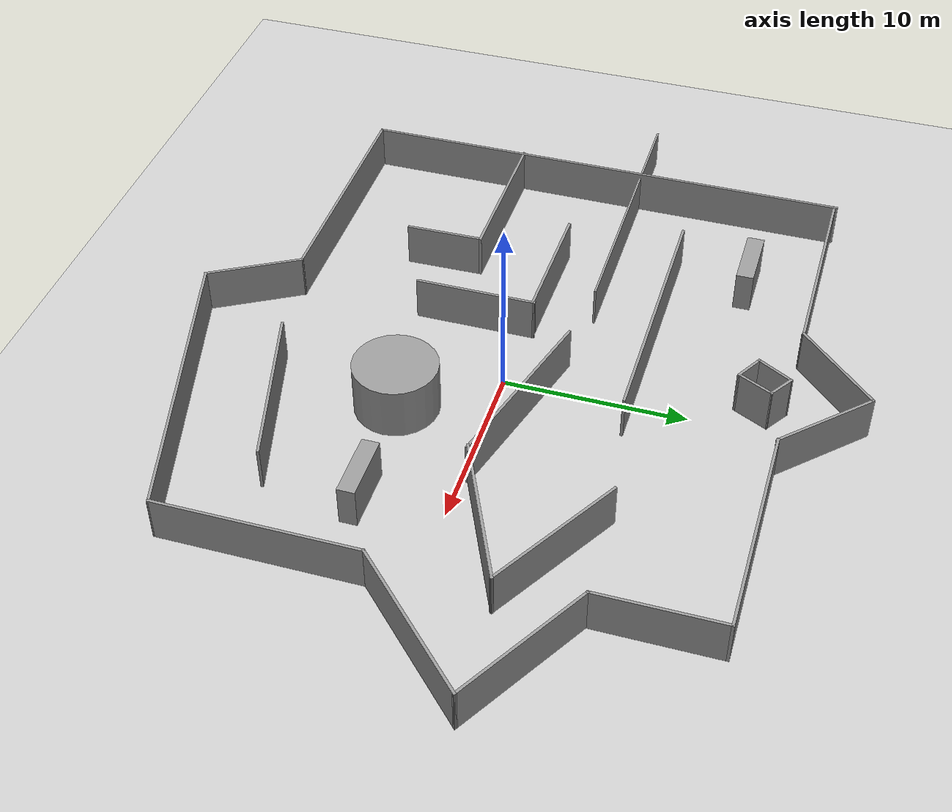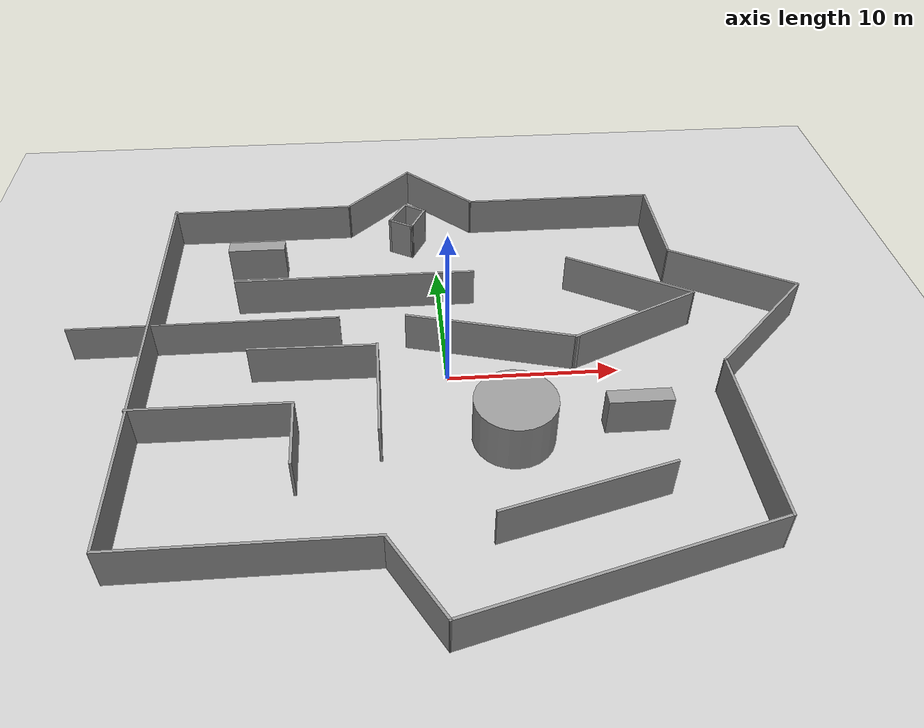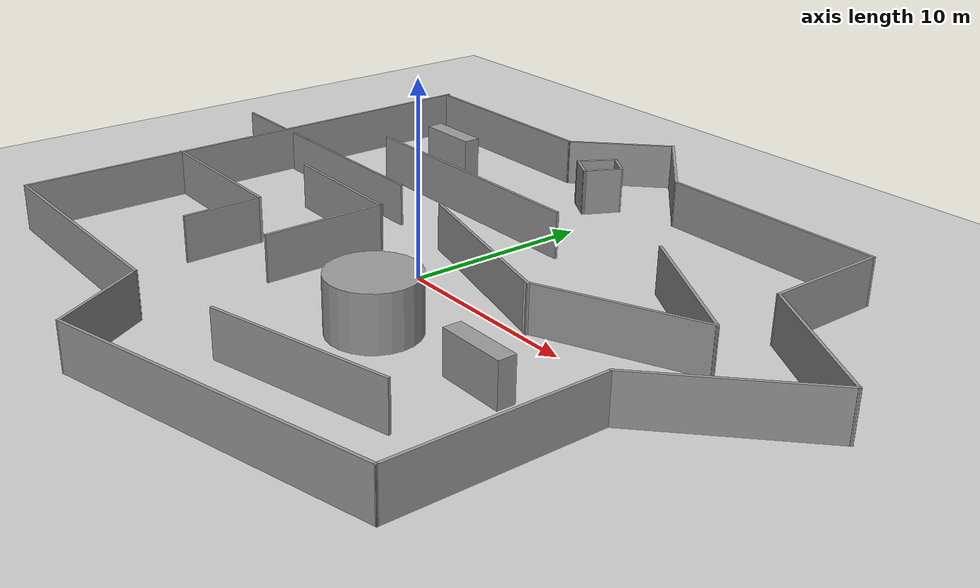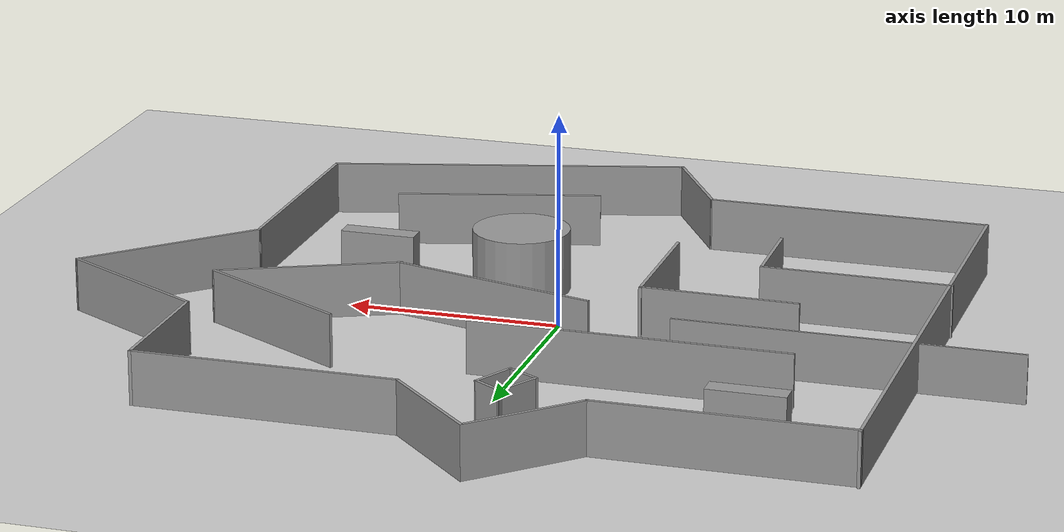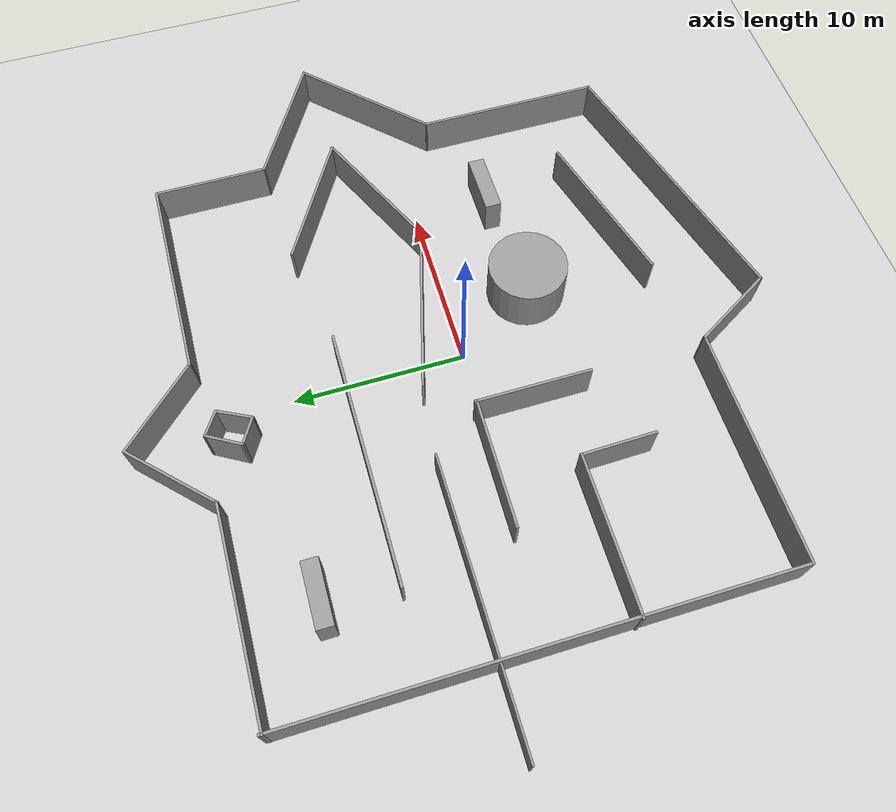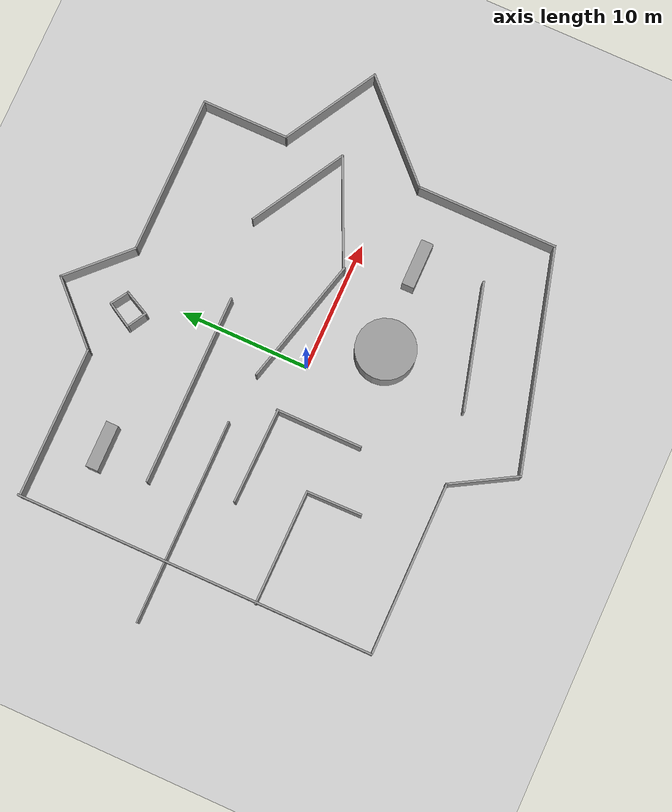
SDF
<sdf version="1.7">
 <world name="default">
  <light name="sun" type="directional">
   <pose>0 0 10 0 -0 0</pose>
   <diffuse>0.8 0.8 0.8 1</diffuse>
   <specular>0.2 0.2 0.2 1</specular>
   <attenuation>
    <range>1000</range>
    <constant>0.9</constant>
    <linear>0.01</linear>
    <quadratic>0.001</quadratic>
   </attenuation>
   <direction>-0.5 0.1 -0.9</direction>
   <spot><inner_angle>0</inner_angle><outer_angle>0</outer_angle><falloff>0</falloff></spot>
  </light>
  <model name="ground_plane">
   <static>1</static>
   <link name="link">
    <collision name="collision">
     <geometry><plane><normal>0 0 1</normal><size>100 100</size></plane></geometry>
     <surface>
      <contact><collide_bitmask>65535</collide_bitmask></contact>
      <friction><ode><mu>100</mu><mu2>50</mu2></ode></friction>
     </surface>
    </collision>
    <visual name="visual">
     <cast_shadows>0</cast_shadows>
     <geometry><plane><normal>0 0 1</normal><size>100 100</size></plane></geometry>
     <material>
      <script><uri>file://media/materials/scripts/gazebo.material</uri><name>Gazebo/Grey</name></script>
     </material>
    </visual>
   </link>
  </model>
  <gravity>0 0 -9.8</gravity>
  <magnetic_field>6e-06 2.3e-05 -4.2e-05</magnetic_field>
  <atmosphere type="adiabatic"/>
  <physics type="ode">
   <max_step_size>0.001</max_step_size>
   <real_time_factor>1</real_time_factor>
   <real_time_update_rate>1000</real_time_update_rate>
  </physics>
  <scene><ambient>0.4 0.4 0.4 1</ambient><background>0.7 0.7 0.7 1</background><shadows>1</shadows></scene>
  <audio><device>default</device></audio>
  <spherical_coordinates>
   <surface_model>EARTH_WGS84</surface_model>
   <latitude_deg>0</latitude_deg>
   <longitude_deg>0</longitude_deg>
   <elevation>0</elevation>
   <heading_deg>0</heading_deg>
  </spherical_coordinates>
  <model name="hard_test_model">
   <pose>2.24994 0.789451 0 0 -0 0</pose>
   <link name="Wall_10">
    <collision name="Wall_10_Collision">
     <geometry><box><size>11 0.15 2.5</size></box></geometry>
     <pose>0 0 1.25 0 -0 0</pose>
    </collision>
    <visual name="Wall_10_Visual">
     <pose>0 0 1.25 0 -0 0</pose>
     <geometry><box><size>11 0.15 2.5</size></box></geometry>
     <material>
      <script><uri>file://media/materials/scripts/gazebo.material</uri><name>Gazebo/Grey</name></script>
      <ambient>1 1 1 1</ambient>
     </material>
     <meta><layer>0</layer></meta>
    </visual>
    <pose>13.0803 -8.39953 0 0 -0 1.5708</pose>
   </link>
   <link name="Wall_11">
    <collision name="Wall_11_Collision">
     <geometry><box><size>9.25 0.15 2.5</size></box></geometry>
     <pose>0 0 1.25 0 -0 0</pose>
    </collision>
    <visual name="Wall_11_Visual">
     <pose>0 0 1.25 0 -0 0</pose>
     <geometry><box><size>9.25 0.15 2.5</size></box></geometry>
     <material>
      <script><uri>file://media/materials/scripts/gazebo.material</uri><name>Gazebo/Grey</name></script>
      <ambient>1 1 1 1</ambient>
     </material>
     <meta><layer>0</layer></meta>
    </visual>
    <pose>16.2976 0.242808 0 0 -0 0.785398</pose>
   </link>
   <link name="Wall_12">
    <collision name="Wall_12_Collision">
     <geometry><box><size>8.25 0.15 2.5</size></box></geometry>
     <pose>0 0 1.25 0 -0 0</pose>
    </collision>
    <visual name="Wall_12_Visual">
     <pose>0 0 1.25 0 -0 0</pose>
     <geometry><box><size>8.25 0.15 2.5</size></box></geometry>
     <material>
      <script><uri>file://media/materials/scripts/gazebo.material</uri><name>Gazebo/Grey</name></script>
      <ambient>1 1 1 1</ambient>
     </material>
     <meta><layer>0</layer></meta>
    </visual>
    <pose>16.0075 5.48514 0 0 -0 2.61799</pose>
   </link>
   <link name="Wall_13">
    <collision name="Wall_13_Collision">
     <geometry><box><size>6.75 0.15 2.5</size></box></geometry>
     <pose>0 0 1.25 0 -0 0</pose>
    </collision>
    <visual name="Wall_13_Visual">
     <pose>0 0 1.25 0 -0 0</pose>
     <geometry><box><size>6.75 0.15 2.5</size></box></geometry>
     <material>
      <script><uri>file://media/materials/scripts/gazebo.material</uri><name>Gazebo/Grey</name></script>
      <ambient>1 1 1 1</ambient>
     </material>
     <meta><layer>0</layer></meta>
    </visual>
    <pose>12.5001 10.8101 0 0 -0 1.5708</pose>
   </link>
   <link name="Wall_14">
    <collision name="Wall_14_Collision">
     <geometry><box><size>12.25 0.15 2.5</size></box></geometry>
     <pose>0 0 1.25 0 -0 0</pose>
    </collision>
    <visual name="Wall_14_Visual">
     <pose>0 0 1.25 0 -0 0</pose>
     <geometry><box><size>12.25 0.15 2.5</size></box></geometry>
     <material>
      <script><uri>file://media/materials/scripts/gazebo.material</uri><name>Gazebo/Grey</name></script>
      <ambient>1 1 1 1</ambient>
     </material>
     <meta><layer>0</layer></meta>
    </visual>
    <pose>6.45013 14.1101 0 0 -0 3.14159</pose>
   </link>
   <link name="Wall_15">
    <collision name="Wall_15_Collision">
     <geometry><box><size>6 0.15 2.5</size></box></geometry>
     <pose>0 0 1.25 0 -0 0</pose>
    </collision>
    <visual name="Wall_15_Visual">
     <pose>0 0 1.25 0 -0 0</pose>
     <geometry><box><size>6 0.15 2.5</size></box></geometry>
     <material>
      <script><uri>file://media/materials/scripts/gazebo.material</uri><name>Gazebo/Grey</name></script>
      <ambient>1 1 1 1</ambient>
     </material>
     <meta><layer>0</layer></meta>
    </visual>
    <pose>-1.66816 16.1784 0 0 -0 2.35619</pose>
   </link>
   <link name="Wall_16">
    <collision name="Wall_16_Collision">
     <geometry><box><size>6 0.15 2.5</size></box></geometry>
     <pose>0 0 1.25 0 -0 0</pose>
    </collision>
    <visual name="Wall_16_Visual">
     <pose>0 0 1.25 0 -0 0</pose>
     <geometry><box><size>6 0.15 2.5</size></box></geometry>
     <material>
      <script><uri>file://media/materials/scripts/gazebo.material</uri><name>Gazebo/Grey</name></script>
      <ambient>1 1 1 1</ambient>
     </material>
     <meta><layer>0</layer></meta>
    </visual>
    <pose>-5.80473 16.1784 0 0 -0 -2.35619</pose>
   </link>
   <link name="Wall_17">
    <collision name="Wall_17_Collision">
     <geometry><box><size>11.75 0.15 2.5</size></box></geometry>
     <pose>0 0 1.25 0 -0 0</pose>
    </collision>
    <visual name="Wall_17_Visual">
     <pose>0 0 1.25 0 -0 0</pose>
     <geometry><box><size>11.75 0.15 2.5</size></box></geometry>
     <material>
      <script><uri>file://media/materials/scripts/gazebo.material</uri><name>Gazebo/Grey</name></script>
      <ambient>1 1 1 1</ambient>
     </material>
     <meta><layer>0</layer></meta>
    </visual>
    <pose>-13.673 14.1101 0 0 -0 3.14159</pose>
   </link>
   <link name="Wall_19">
    <collision name="Wall_19_Collision">
     <geometry><box><size>14.75 0.15 2.5</size></box></geometry>
     <pose>0 0 1.25 0 -0 0</pose>
    </collision>
    <visual name="Wall_19_Visual">
     <pose>0 0 1.25 0 -0 0</pose>
     <geometry><box><size>14.75 0.15 2.5</size></box></geometry>
     <material>
      <script><uri>file://media/materials/scripts/gazebo.material</uri><name>Gazebo/Grey</name></script>
      <ambient>1 1 1 1</ambient>
     </material>
     <meta><layer>0</layer></meta>
    </visual>
    <pose>-7.46874 6.19096 0 0 -0 0</pose>
   </link>
   <link name="Wall_26">
    <collision name="Wall_26_Collision">
     <geometry><box><size>8.95017 0.15 2.5</size></box></geometry>
     <pose>0 0 1.25 0 -0 0</pose>
    </collision>
    <visual name="Wall_26_Visual">
     <pose>0 0 1.25 0 -0 0</pose>
     <geometry><box><size>8.95017 0.15 2.5</size></box></geometry>
     <material>
      <script><uri>file://media/materials/scripts/gazebo.material</uri><name>Gazebo/Grey</name></script>
      <ambient>1 1 1 1</ambient>
     </material>
     <meta><layer>0</layer></meta>
    </visual>
    <pose>-15.1455 -4.60613 0 0 -0 -0.007733</pose>
   </link>
   <link name="Wall_27">
    <collision name="Wall_27_Collision">
     <geometry><box><size>4.22977 0.15 2.5</size></box></geometry>
     <pose>0 0 1.25 0 -0 0</pose>
    </collision>
    <visual name="Wall_27_Visual">
     <pose>0 0 1.25 0 -0 0</pose>
     <geometry><box><size>4.22977 0.15 2.5</size></box></geometry>
     <material>
      <script><uri>file://media/materials/scripts/gazebo.material</uri><name>Gazebo/Grey</name></script>
      <ambient>1 1 1 1</ambient>
     </material>
     <meta><layer>0</layer></meta>
    </visual>
    <pose>-10.7115 -6.81586 0 0 -0 -1.55411</pose>
   </link>
   <link name="Wall_29">
    <collision name="Wall_29_Collision">
     <geometry><box><size>7.43038 0.15 2.5</size></box></geometry>
     <pose>0 0 1.25 0 -0 0</pose>
    </collision>
    <visual name="Wall_29_Visual">
     <pose>0 0 1.25 0 -0 0</pose>
     <geometry><box><size>7.43038 0.15 2.5</size></box></geometry>
     <material>
      <script><uri>file://media/materials/scripts/gazebo.material</uri><name>Gazebo/Grey</name></script>
      <ambient>1 1 1 1</ambient>
     </material>
     <meta><layer>0</layer></meta>
    </visual>
    <pose>-9.86099 -0.237423 0 0 -0 -0.018696</pose>
   </link>
   <link name="Wall_3">
    <collision name="Wall_3_Collision">
     <geometry><box><size>28 0.15 2.5</size></box></geometry>
     <pose>0 0 1.25 0 -0 0</pose>
    </collision>
    <visual name="Wall_3_Visual">
     <pose>0 0 1.25 0 -0 0</pose>
     <geometry><box><size>28 0.15 2.5</size></box></geometry>
     <material>
      <script><uri>file://media/materials/scripts/gazebo.material</uri><name>Gazebo/Grey</name></script>
      <ambient>1 1 1 1</ambient>
     </material>
     <meta><layer>0</layer></meta>
    </visual>
    <pose>-19.4621 0.307902 0 0 -0 -1.5708</pose>
   </link>
   <link name="Wall_30">
    <collision name="Wall_30_Collision">
     <geometry><box><size>6.75 0.15 2.5</size></box></geometry>
     <pose>0 0 1.25 0 -0 0</pose>
    </collision>
    <visual name="Wall_30_Visual">
     <pose>0 0 1.25 0 -0 0</pose>
     <geometry><box><size>6.75 0.15 2.5</size></box></geometry>
     <material>
      <script><uri>file://media/materials/scripts/gazebo.material</uri><name>Gazebo/Grey</name></script>
      <ambient>1 1 1 1</ambient>
     </material>
     <meta><layer>0</layer></meta>
    </visual>
    <pose>-6.22144 -3.53742 0 0 -0 -1.5708</pose>
   </link>
   <link name="Wall_38">
    <collision name="Wall_38_Collision">
     <geometry><box><size>9.75 0.15 2.5</size></box></geometry>
     <pose>0 0 1.25 0 -0 0</pose>
    </collision>
    <visual name="Wall_38_Visual">
     <pose>0 0 1.25 0 -0 0</pose>
     <geometry><box><size>9.75 0.15 2.5</size></box></geometry>
     <material>
      <script><uri>file://media/materials/scripts/gazebo.material</uri><name>Gazebo/Grey</name></script>
      <ambient>1 1 1 1</ambient>
     </material>
     <meta><layer>0</layer></meta>
    </visual>
    <pose>3.88202 -11.3761 0 0 -0 0.261799</pose>
   </link>
   <link name="Wall_4">
    <collision name="Wall_4_Collision">
     <geometry><box><size>13.5 0.15 2.5</size></box></geometry>
     <pose>0 0 1.25 0 -0 0</pose>
    </collision>
    <visual name="Wall_4_Visual">
     <pose>0 0 1.25 0 -0 0</pose>
     <geometry><box><size>13.5 0.15 2.5</size></box></geometry>
     <material>
      <script><uri>file://media/materials/scripts/gazebo.material</uri><name>Gazebo/Grey</name></script>
      <ambient>1 1 1 1</ambient>
     </material>
     <meta><layer>0</layer></meta>
    </visual>
    <pose>-12.7871 -13.6171 0 0 -0 0</pose>
   </link>
   <link name="Wall_41">
    <collision name="Wall_41_Collision">
     <geometry><box><size>8.25 0.15 2.5</size></box></geometry>
     <pose>0 0 1.25 0 -0 0</pose>
    </collision>
    <visual name="Wall_41_Visual">
     <pose>0 0 1.25 0 -0 0</pose>
     <geometry><box><size>8.25 0.15 2.5</size></box></geometry>
     <material>
      <script><uri>file://media/materials/scripts/gazebo.material</uri><name>Gazebo/Grey</name></script>
      <ambient>1 1 1 1</ambient>
     </material>
     <meta><layer>0</layer></meta>
    </visual>
    <pose>9.42216 5.15996 0 0 -0 -0.523599</pose>
   </link>
   <link name="Wall_42">
    <collision name="Wall_42_Collision">
     <geometry><box><size>8.69174 0.15 2.5</size></box></geometry>
     <pose>0 0 1.25 0 -0 0</pose>
    </collision>
    <visual name="Wall_42_Visual">
     <pose>0 0 1.25 0 -0 0</pose>
     <geometry><box><size>8.69174 0.15 2.5</size></box></geometry>
     <material>
      <script><uri>file://media/materials/scripts/gazebo.material</uri><name>Gazebo/Grey</name></script>
      <ambient>1 1 1 1</ambient>
     </material>
     <meta><layer>0</layer></meta>
    </visual>
    <pose>9.04499 1.36002 0 0 -0 -2.713</pose>
   </link>
   <link name="Wall_44">
    <collision name="Wall_44_Collision">
     <geometry><box><size>10.25 0.15 2.5</size></box></geometry>
     <pose>0 0 1.25 0 -0 0</pose>
    </collision>
    <visual name="Wall_44_Visual">
     <pose>0 0 1.25 0 -0 0</pose>
     <geometry><box><size>10.25 0.15 2.5</size></box></geometry>
     <material>
      <script><uri>file://media/materials/scripts/gazebo.material</uri><name>Gazebo/Grey</name></script>
      <ambient>1 1 1 1</ambient>
     </material>
     <meta><layer>0</layer></meta>
    </visual>
    <pose>0.418595 0.892123 0 0 -0 2.87979</pose>
   </link>
   <link name="Wall_47">
    <collision name="Wall_47_Collision">
     <geometry><box><size>2.25 0.15 2.5</size></box></geometry>
     <pose>0 0 1.25 0 -0 0</pose>
    </collision>
    <visual name="Wall_47_Visual">
     <pose>0 0 1.25 0 -0 0</pose>
     <geometry><box><size>2.25 0.15 2.5</size></box></geometry>
     <material>
      <script><uri>file://media/materials/scripts/gazebo.material</uri><name>Gazebo/Grey</name></script>
      <ambient>1 1 1 1</ambient>
     </material>
     <meta><layer>0</layer></meta>
    </visual>
    <pose>-4.58481 13.1302 0 0 -0 1.0472</pose>
   </link>
   <link name="Wall_48">
    <collision name="Wall_48_Collision">
     <geometry><box><size>1.63369 0.15 2.5</size></box></geometry>
     <pose>0 0 1.25 0 -0 0</pose>
    </collision>
    <visual name="Wall_48_Visual">
     <pose>0 0 1.25 0 -0 0</pose>
     <geometry><box><size>1.63369 0.15 2.5</size></box></geometry>
     <material>
      <script><uri>file://media/materials/scripts/gazebo.material</uri><name>Gazebo/Grey</name></script>
      <ambient>1 1 1 1</ambient>
     </material>
     <meta><layer>0</layer></meta>
    </visual>
    <pose>-3.43505 13.6395 0 0 -0 -0.569482</pose>
   </link>
   <link name="Wall_51">
    <collision name="Wall_51_Collision">
     <geometry><box><size>1.75 0.15 2.5</size></box></geometry>
     <pose>0 0 1.25 0 -0 0</pose>
    </collision>
    <visual name="Wall_51_Visual">
     <pose>0 0 1.25 0 -0 0</pose>
     <geometry><box><size>1.75 0.15 2.5</size></box></geometry>
     <material>
      <script><uri>file://media/materials/scripts/gazebo.material</uri><name>Gazebo/Grey</name></script>
      <ambient>1 1 1 1</ambient>
     </material>
     <meta><layer>0</layer></meta>
    </visual>
    <pose>-4.41699 11.8209 0 0 -0 -0.523599</pose>
   </link>
   <link name="Wall_52">
    <collision name="Wall_52_Collision">
     <geometry><box><size>2.18536 0.15 2.5</size></box></geometry>
     <pose>0 0 1.25 0 -0 0</pose>
    </collision>
    <visual name="Wall_52_Visual">
     <pose>0 0 1.25 0 -0 0</pose>
     <geometry><box><size>2.18536 0.15 2.5</size></box></geometry>
     <material>
      <script><uri>file://media/materials/scripts/gazebo.material</uri><name>Gazebo/Grey</name></script>
      <ambient>1 1 1 1</ambient>
     </material>
     <meta><layer>0</layer></meta>
    </visual>
    <pose>-3.26722 12.3302 0 0 -0 1.10514</pose>
   </link>
   <link name="Wall_8">
    <collision name="Wall_8_Collision">
     <geometry><box><size>5.5 0.15 2.5</size></box></geometry>
     <pose>0 0 1.25 0 -0 0</pose>
    </collision>
    <visual name="Wall_8_Visual">
     <pose>0 0 1.25 0 -0 0</pose>
     <geometry><box><size>5.5 0.15 2.5</size></box></geometry>
     <material>
      <script><uri>file://media/materials/scripts/gazebo.material</uri><name>Gazebo/Grey</name></script>
      <ambient>1 1 1 1</ambient>
     </material>
     <meta><layer>0</layer></meta>
    </visual>
    <pose>-4.77457 -15.9337 0 0 -0 -1.0472</pose>
   </link>
   <link name="Wall_9">
    <collision name="Wall_9_Collision">
     <geometry><box><size>17.25 0.15 2.5</size></box></geometry>
     <pose>0 0 1.25 0 -0 0</pose>
    </collision>
    <visual name="Wall_9_Visual">
     <pose>0 0 1.25 0 -0 0</pose>
     <geometry><box><size>17.25 0.15 2.5</size></box></geometry>
     <material>
      <script><uri>file://media/materials/scripts/gazebo.material</uri><name>Gazebo/Grey</name></script>
      <ambient>1 1 1 1</ambient>
     </material>
     <meta><layer>0</layer></meta>
    </visual>
    <pose>4.8216 -16.0374 0 0 -0 0.261799</pose>
   </link>
   <static>1</static>
  </model>
  <model name="cubo_statico">
   <link name="link">
    <inertial>
     <mass>1</mass>
     <inertia><ixx>0.145833</ixx><ixy>0</ixy><ixz>0</ixz><iyy>0.145833</iyy><iyz>0</iyz><izz>0.125</izz></inertia>
    </inertial>
    <visual name="visual">
     <geometry><cylinder><radius>2.29556</radius><length>5.73977</length></cylinder></geometry>
     <material>
      <script><name>Gazebo/Grey</name><uri>file://media/materials/scripts/gazebo.material</uri></script>
      <shader type="pixel"/>
     </material>
    </visual>
    <collision name="collision">
     <geometry><cylinder><radius>2.29556</radius><length>5.73977</length></cylinder></geometry>
     <surface>
      <friction>
       <ode><mu>1</mu><mu2>1</mu2><fdir1>0 0 0</fdir1><slip1>0</slip1><slip2>0</slip2></ode>
       <torsional>
        <coefficient>1</coefficient>
        <patch_radius>0</patch_radius>
        <surface_radius>0</surface_radius>
        <use_patch_radius>1</use_patch_radius>
        <ode><slip>0</slip></ode>
       </torsional>
      </friction>
      <bounce><restitution_coefficient>0</restitution_coefficient><threshold>1e+06</threshold></bounce>
      <contact>
       <collide_without_contact>0</collide_without_contact>
       <collide_without_contact_bitmask>1</collide_without_contact_bitmask>
       <collide_bitmask>1</collide_bitmask>
       <ode>
        <soft_cfm>0</soft_cfm>
        <soft_erp>0.2</soft_erp>
        <kp>1e+13</kp>
        <kd>1</kd>
        <max_vel>0.01</max_vel>
        <min_depth>0</min_depth>
       </ode>
       <bullet>
        <split_impulse>1</split_impulse>
        <split_impulse_penetration_threshold>-0.01</split_impulse_penetration_threshold>
        <soft_cfm>0</soft_cfm>
        <soft_erp>0.2</soft_erp>
        <kp>1e+13</kp>
        <kd>1</kd>
       </bullet>
      </contact>
     </surface>
    </collision>
   </link>
   <static>1</static>
   <pose>3.25053 -4.83947 0 0 -0 0</pose>
  </model>
  <model name="box_static_0">
   <link name="link">
    <inertial>
     <mass>1</mass>
     <inertia>
      <ixx>0.166667</ixx>
      <ixy>0</ixy>
      <ixz>0</ixz>
      <iyy>0.166667</iyy>
      <iyz>0</iyz>
      <izz>0.166667</izz>
     </inertia>
    </inertial>
    <visual name="visual">
     <geometry><box><size>3.58339 0.958828 4.45081</size></box></geometry>
     <material>
      <script><name>Gazebo/Grey</name><uri>file://media/materials/scripts/gazebo.material</uri></script>
      <shader type="pixel"/>
     </material>
    </visual>
    <collision name="collision">
     <geometry><box><size>3.58339 0.958828 4.45081</size></box></geometry>
     <surface>
      <friction>
       <ode><mu>1</mu><mu2>1</mu2><fdir1>0 0 0</fdir1><slip1>0</slip1><slip2>0</slip2></ode>
       <torsional>
        <coefficient>1</coefficient>
        <patch_radius>0</patch_radius>
        <surface_radius>0</surface_radius>
        <use_patch_radius>1</use_patch_radius>
        <ode><slip>0</slip></ode>
       </torsional>
      </friction>
      <bounce><restitution_coefficient>0</restitution_coefficient><threshold>1e+06</threshold></bounce>
      <contact>
       <collide_without_contact>0</collide_without_contact>
       <collide_without_contact_bitmask>1</collide_without_contact_bitmask>
       <collide_bitmask>1</collide_bitmask>
       <ode>
        <soft_cfm>0</soft_cfm>
        <soft_erp>0.2</soft_erp>
        <kp>1e+13</kp>
        <kd>1</kd>
        <max_vel>0.01</max_vel>
        <min_depth>0</min_depth>
       </ode>
       <bullet>
        <split_impulse>1</split_impulse>
        <split_impulse_penetration_threshold>-0.01</split_impulse_penetration_threshold>
        <soft_cfm>0</soft_cfm>
        <soft_erp>0.2</soft_erp>
        <kp>1e+13</kp>
        <kd>1</kd>
       </bullet>
      </contact>
     </surface>
    </collision>
   </link>
   <static>1</static>
   <pose>10.0727 -4.38751 0 0 -0 0</pose>
  </model>
  <model name="box_static_0_0">
   <link name="link">
    <inertial>
     <mass>1</mass>
     <inertia>
      <ixx>0.166667</ixx>
      <ixy>0</ixy>
      <ixz>0</ixz>
      <iyy>0.166667</iyy>
      <iyz>0</iyz>
      <izz>0.166667</izz>
     </inertia>
    </inertial>
    <visual name="visual">
     <geometry><box><size>3.58339 0.958828 4.45081</size></box></geometry>
     <material>
      <script><name>Gazebo/Grey</name><uri>file://media/materials/scripts/gazebo.material</uri></script>
      <shader type="pixel"/>
     </material>
    </visual>
    <collision name="collision">
     <geometry><box><size>3.58339 0.958828 4.45081</size></box></geometry>
     <surface>
      <friction>
       <ode><mu>1</mu><mu2>1</mu2><fdir1>0 0 0</fdir1><slip1>0</slip1><slip2>0</slip2></ode>
       <torsional>
        <coefficient>1</coefficient>
        <patch_radius>0</patch_radius>
        <surface_radius>0</surface_radius>
        <use_patch_radius>1</use_patch_radius>
        <ode><slip>0</slip></ode>
       </torsional>
      </friction>
      <bounce><restitution_coefficient>0</restitution_coefficient><threshold>1e+06</threshold></bounce>
      <contact>
       <collide_without_contact>0</collide_without_contact>
       <collide_without_contact_bitmask>1</collide_without_contact_bitmask>
       <collide_bitmask>1</collide_bitmask>
       <ode>
        <soft_cfm>0</soft_cfm>
        <soft_erp>0.2</soft_erp>
        <kp>1e+13</kp>
        <kd>1</kd>
        <max_vel>0.01</max_vel>
        <min_depth>0</min_depth>
       </ode>
       <bullet>
        <split_impulse>1</split_impulse>
        <split_impulse_penetration_threshold>-0.01</split_impulse_penetration_threshold>
        <soft_cfm>0</soft_cfm>
        <soft_erp>0.2</soft_erp>
        <kp>1e+13</kp>
        <kd>1</kd>
       </bullet>
      </contact>
     </surface>
    </collision>
   </link>
   <static>1</static>
   <pose>-11.5466 11.0425 0 0 -0 0</pose>
  </model>
  <model name="box_static_0_1">
   <link name="link">
    <inertial>
     <mass>1</mass>
     <inertia>
      <ixx>0.166667</ixx>
      <ixy>0</ixy>
      <ixz>0</ixz>
      <iyy>0.166667</iyy>
      <iyz>0</iyz>
      <izz>0.166667</izz>
     </inertia>
    </inertial>
    <visual name="visual">
     <geometry><box><size>15.9005 0.117105 4.45081</size></box></geometry>
     <material>
      <script><name>Gazebo/Grey</name><uri>file://media/materials/scripts/gazebo.material</uri></script>
      <shader type="pixel"/>
     </material>
    </visual>
    <collision name="collision">
     <geometry><box><size>15.9005 0.117105 4.45081</size></box></geometry>
     <surface>
      <friction>
       <ode><mu>1</mu><mu2>1</mu2><fdir1>0 0 0</fdir1><slip1>0</slip1><slip2>0</slip2></ode>
       <torsional>
        <coefficient>1</coefficient>
        <patch_radius>0</patch_radius>
        <surface_radius>0</surface_radius>
        <use_patch_radius>1</use_patch_radius>
        <ode><slip>0</slip></ode>
       </torsional>
      </friction>
      <bounce><restitution_coefficient>0</restitution_coefficient><threshold>1e+06</threshold></bounce>
      <contact>
       <collide_without_contact>0</collide_without_contact>
       <collide_without_contact_bitmask>1</collide_without_contact_bitmask>
       <collide_bitmask>1</collide_bitmask>
       <ode>
        <soft_cfm>0</soft_cfm>
        <soft_erp>0.2</soft_erp>
        <kp>1e+13</kp>
        <kd>1</kd>
        <max_vel>0.01</max_vel>
        <min_depth>0</min_depth>
       </ode>
       <bullet>
        <split_impulse>1</split_impulse>
        <split_impulse_penetration_threshold>-0.01</split_impulse_penetration_threshold>
        <soft_cfm>0</soft_cfm>
        <soft_erp>0.2</soft_erp>
        <kp>1e+13</kp>
        <kd>1</kd>
       </bullet>
      </contact>
     </surface>
    </collision>
   </link>
   <static>1</static>
   <pose>-14.0962 3.42306 0 0 -0 0</pose>
  </model>
  <plugin name="gazebo_ros_state" filename="libgazebo_ros_state.so">
   <ros><namespace>/gazebo</namespace></ros>
   <update_rate>1.0</update_rate>
  </plugin>
 </world>
</sdf>
